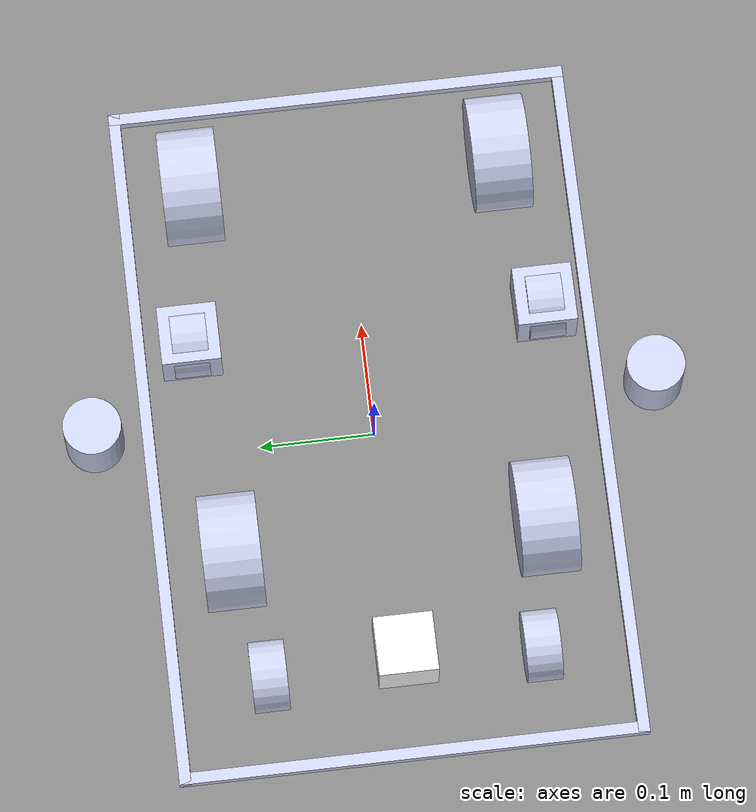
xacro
<?xml version="1.0" encoding="utf-8"?>
<robot
  name="r2_sldasm">
  <link
    name="world" />
  <link
    name="base_footprint" />
  <joint
    name="world_to_base_footprint"
    type="fixed">
    <origin
      xyz="0 0 0"
      rpy="0 0 0" />
    <parent
      link="world" />
    <child
      link="base_footprint" />
  </joint>
  <joint
    name="base_footprint_to_base"
    type="fixed">
    <origin
      xyz="0 0 0.05"
      rpy="0 0 0" />
    <parent
      link="base_footprint" />
    <child
      link="base_link" />
  </joint>
  <link
    name="imu_link" />
  <joint
    name="base_to_imu"
    type="fixed">
    <origin
      xyz="0 0 0"
      rpy="0 0 0" />
    <parent
      link="base_link" />
    <child
      link="imu_link" />
  </joint>
  <link
    name="base_link">
    <inertial>
      <origin
        xyz="1.13922419176372 1.2668045666925 1.27201617566475"
        rpy="0 0 0" />
      <mass
        value="0.366040011435051" />
      <inertia
        ixx="0.00204747066128391"
        ixy="4.46992140780942E-16"
        ixz="8.1080700899077E-08"
        iyy="0.00296607405293247"
        iyz="2.85060987326875E-19"
        izz="0.00116154567791364" />
    </inertial>
    <visual>
      <origin
        xyz="0 0.195 0"
        rpy="0 0 0" />
      <geometry>
        <box
          size="0.6 0.01 0.01" />
      </geometry>
      <material
        name="">
        <color
          rgba="0.792156862745098 0.819607843137255 0.933333333333333 1" />
      </material>
    </visual>
    <visual>
      <origin
        xyz="0 -0.195 0"
        rpy="0 0 0" />
      <geometry>
        <box
          size="0.6 0.01 0.01" />
      </geometry>
      <material
        name="">
        <color
          rgba="0.792156862745098 0.819607843137255 0.933333333333333 1" />
      </material>
    </visual>
    <visual>
      <origin
        xyz="0.295 0 0"
        rpy="0 0 0" />
      <geometry>
        <box
          size="0.01 0.4 0.01" />
      </geometry>
      <material
        name="">
        <color
          rgba="0.792156862745098 0.819607843137255 0.933333333333333 1" />
      </material>
    </visual>
    <visual>
      <origin
        xyz="-0.295 0 0"
        rpy="0 0 0" />
      <geometry>
        <box
          size="0.01 0.4 0.01" />
      </geometry>
      <material
        name="">
        <color
          rgba="0.792156862745098 0.819607843137255 0.933333333333333 1" />
      </material>
    </visual>
    <collision>
      <origin
        xyz="0 0.195 0"
        rpy="0 0 0" />
      <geometry>
        <box
          size="0.6 0.01 0.01" />
      </geometry>
    </collision>
    <collision>
      <origin
        xyz="0 -0.195 0"
        rpy="0 0 0" />
      <geometry>
        <box
          size="0.6 0.01 0.01" />
      </geometry>
    </collision>
    <collision>
      <origin
        xyz="0.295 0 0"
        rpy="0 0 0" />
      <geometry>
        <box
          size="0.01 0.4 0.01" />
      </geometry>
    </collision>
    <collision>
      <origin
        xyz="-0.295 0 0"
        rpy="0 0 0" />
      <geometry>
        <box
          size="0.01 0.4 0.01" />
      </geometry>
    </collision>
  </link>
  <link
    name="fl_wheel_link">
    <inertial>
      <origin
        xyz="-1.1102E-16 4.4409E-16 0.03"
        rpy="0 0 0" />
      <mass
        value="0.45244" />
      <inertia
        ixx="0.00042894"
        ixy="-1.3553E-20"
        ixz="3.7571E-20"
        iyy="0.00042894"
        iyz="1.6021E-19"
        izz="0.00058643" />
    </inertial>
    <visual>
      <origin
        xyz="0 0 0"
        rpy="0 0 0" />
      <geometry>
        <cylinder
          radius="0.05"
          length="0.05" />
      </geometry>
      <material
        name="">
        <color
          rgba="0.79608 0.82353 0.93725 1" />
      </material>
    </visual>
    <collision>
      <origin
        xyz="0 0 0"
        rpy="0 0 0" />
      <geometry>
        <cylinder
          radius="0.05"
          length="0.05" />
      </geometry>
    </collision>
  </link>
  <joint
    name="fl_wheel_joint"
    type="revolute">
    <origin
      xyz="0.228 0.135 0"
      rpy="-1.5708 -0.66414 -3.141589" />
    <parent
      link="base_link" />
    <child
      link="fl_wheel_link" />
    <axis
      xyz="0 0 1" />
    <limit
      lower="-3.1416"
      upper="3.1416"
      effort="10"
      velocity="6.283185" />
  </joint>
  <link
    name="fr_wheel_link">
    <inertial>
      <origin
        xyz="0 0 0.03"
        rpy="0 0 0" />
      <mass
        value="0.45244" />
      <inertia
        ixx="0.00042894"
        ixy="0"
        ixz="-6.1211E-20"
        iyy="0.00042894"
        iyz="2.7444E-19"
        izz="0.00058643" />
    </inertial>
    <visual>
      <origin
        xyz="0 0 0"
        rpy="0 0 0" />
      <geometry>
        <cylinder
          radius="0.05"
          length="0.05" />
      </geometry>
      <material
        name="">
        <color
          rgba="0.79608 0.82353 0.93725 1" />
      </material>
    </visual>
    <collision>
      <origin
        xyz="0 0 0"
        rpy="0 0 0" />
      <geometry>
        <cylinder
          radius="0.05"
          length="0.05" />
      </geometry>
    </collision>
  </link>
  <joint
    name="fr_wheel_joint"
    type="revolute">
    <origin
      xyz="0.228 -0.135 0"
      rpy="1.5708 -0.21334 -3.141589" />
    <parent
      link="base_link" />
    <child
      link="fr_wheel_link" />
    <axis
      xyz="0 0 1" />
    <limit
      lower="-3.1416"
      upper="3.1416"
      effort="10"
      velocity="6.283185" />
  </joint>
  <link
    name="rl_wheel_link">
    <inertial>
      <origin
        xyz="0 0 0.03"
        rpy="0 0 0" />
      <mass
        value="0.45244" />
      <inertia
        ixx="0.00042894"
        ixy="-1.3553E-20"
        ixz="1.2533E-19"
        iyy="0.00042894"
        iyz="6.9074E-20"
        izz="0.00058643" />
    </inertial>
    <visual>
      <origin
        xyz="0 0 0"
        rpy="0 0 0" />
      <geometry>
        <cylinder
          radius="0.05"
          length="0.05" />
      </geometry>
      <material
        name="">
        <color
          rgba="0.79608 0.82353 0.93725 1" />
      </material>
    </visual>
    <collision>
      <origin
        xyz="0 0 0"
        rpy="0 0 0" />
      <geometry>
        <cylinder
          radius="0.05"
          length="0.05" />
      </geometry>
    </collision>
  </link>
  <joint
    name="rl_wheel_joint"
    type="revolute">
    <origin
      xyz="-0.102 0.135 0"
      rpy="-1.5708 0.15867 -3.141589" />
    <parent
      link="base_link" />
    <child
      link="rl_wheel_link" />
    <axis
      xyz="0 0 1" />
    <limit
      lower="-3.1416"
      upper="3.1416"
      effort="10"
      velocity="6.283185" />
  </joint>
  <link
    name="rr_wheel_link">
    <inertial>
      <origin
        xyz="0 0 0.03"
        rpy="0 0 0" />
      <mass
        value="0.45244" />
      <inertia
        ixx="0.00042894"
        ixy="-1.3553E-20"
        ixz="5.9443E-20"
        iyy="0.00042894"
        iyz="-2.1109E-19"
        izz="0.00058643" />
    </inertial>
    <visual>
      <origin
        xyz="0 0 0"
        rpy="0 0 0" />
      <geometry>
        <cylinder
          radius="0.05"
          length="0.05" />
      </geometry>
      <material
        name="">
        <color
          rgba="0.79608 0.82353 0.93725 1" />
      </material>
    </visual>
    <collision>
      <origin
        xyz="0 0 0"
        rpy="0 0 0" />
      <geometry>
        <cylinder
          radius="0.05"
          length="0.05" />
      </geometry>
    </collision>
  </link>
  <joint
    name="rr_wheel_joint"
    type="revolute">
    <origin
      xyz="-0.102 -0.135 0"
      rpy="-1.5708 0.39742 -0.000004" />
    <parent
      link="base_link" />
    <child
      link="rr_wheel_link" />
    <axis
      xyz="0 0 1" />
    <limit
      lower="-3.1416"
      upper="3.1416"
      effort="10"
      velocity="6.283185" />
  </joint>
  <link
    name="lidar1_link">
    <inertial>
      <origin
        xyz="3.4964E-06 0.038527 -0.00045594"
        rpy="0 0 0" />
      <mass
        value="0.23922" />
      <inertia
        ixx="0.0002191"
        ixy="2.549E-08"
        ixz="8.8072E-08"
        iyy="0.00011628"
        iyz="3.9064E-07"
        izz="0.00021622" />
    </inertial>
    <visual>
      <origin
        xyz="0 0 0"
        rpy="0 0 0" />
      <geometry>
        <cylinder
          radius="0.025"
          length="0.06" />
      </geometry>
      <material
        name="">
        <color
          rgba="0.79216 0.81961 0.93333 1" />
      </material>
    </visual>
    <collision>
      <origin
        xyz="0 0 0"
        rpy="0 0 0" />
      <geometry>
        <cylinder
          radius="0.025"
          length="0.06" />
      </geometry>
    </collision>
  </link>
  <joint
    name="lidar1_joint"
    type="fixed">
    <origin
      xyz="0 0.24 0.05"
      rpy="0 0 1.5708" />
    <parent
      link="base_link" />
    <child
      link="lidar1_link" />
    <axis
      xyz="0 0 0" />
  </joint>
  <link
    name="lidar2_link">
    <inertial>
      <origin
        xyz="3.4963E-06 0.038527 -0.00045594"
        rpy="0 0 0" />
      <mass
        value="0.23922" />
      <inertia
        ixx="0.0002191"
        ixy="2.549E-08"
        ixz="8.8073E-08"
        iyy="0.00011628"
        iyz="3.9064E-07"
        izz="0.00021622" />
    </inertial>
    <visual>
      <origin
        xyz="0 0 0"
        rpy="0 0 0" />
      <geometry>
        <cylinder
          radius="0.025"
          length="0.06" />
      </geometry>
      <material
        name="">
        <color
          rgba="0.79216 0.81961 0.93333 1" />
      </material>
    </visual>
    <collision>
      <origin
        xyz="0 0 0"
        rpy="0 0 0" />
      <geometry>
        <cylinder
          radius="0.025"
          length="0.06" />
      </geometry>
    </collision>
  </link>
  <joint
    name="lidar2_joint"
    type="fixed">
    <origin
      xyz="0 -0.24 0.05"
      rpy="0 0 -1.5708" />
    <parent
      link="base_link" />
    <child
      link="lidar2_link" />
    <axis
      xyz="0 0 0" />
  </joint>
  <link
    name="laser_left" />
  <joint
    name="lidar1_to_laser_left"
    type="fixed">
    <origin
      xyz="0 0 0"
      rpy="0 0 0" />
    <parent
      link="lidar1_link" />
    <child
      link="laser_left" />
  </joint>
  <link
    name="laser_right" />
  <joint
    name="lidar2_to_laser_right"
    type="fixed">
    <origin
      xyz="0 0 0"
      rpy="0 0 0" />
    <parent
      link="lidar2_link" />
    <child
      link="laser_right" />
  </joint>
  <link
    name="fl_lift_link">
    <inertial>
      <origin
        xyz="-0.0070463 -0.013228 0.28759"
        rpy="0 0 0" />
      <mass
        value="0.078193" />
      <inertia
        ixx="0.00080343"
        ixy="-2.6429E-09"
        ixz="-1.3443E-09"
        iyy="0.00080152"
        iyz="3.1428E-10"
        izz="1.109E-05" />
    </inertial>
    <visual>
      <origin
        xyz="0 0 0"
        rpy="0 0 0" />
      <geometry>
        <box
          size="0.05 0.05 0.05" />
      </geometry>
      <material
        name="">
        <color
          rgba="0.79216 0.81961 0.93333 1" />
      </material>
    </visual>
    <collision>
      <origin
        xyz="0 0 0"
        rpy="0 0 0" />
      <geometry>
        <box
          size="0.05 0.05 0.05" />
      </geometry>
    </collision>
  </link>
  <joint
    name="fl_lift_joint"
    type="prismatic">
    <origin
      xyz="0.055 0.15 0.1112"
      rpy="0 0 1.570796" />
    <parent
      link="base_link" />
    <child
      link="fl_lift_link" />
    <axis
      xyz="0 0 1" />
    <limit
      lower="-0.39"
      upper="0"
      effort="300"
      velocity="0.05" />
  </joint>
  <link
    name="fl_subwheel_link">
    <inertial>
      <origin
        xyz="-2.55795384873636E-13 1.35447209004269E-14 0.0159999999997129"
        rpy="0 0 0" />
      <mass
        value="0.0859233130579177" />
      <inertia
        ixx="2.75791810474836E-05"
        ixy="-4.2351647362715E-22"
        ixz="2.1700004154568E-20"
        iyy="2.75791810474836E-05"
        iyz="3.36778628766409E-20"
        izz="4.05398582554522E-05" />
    </inertial>
    <visual>
      <origin
        xyz="0 0 0"
        rpy="0 0 0" />
      <geometry>
        <cylinder
          radius="0.03"
          length="0.03" />
      </geometry>
      <material
        name="">
        <color
          rgba="0.792156862745098 0.819607843137255 0.933333333333333 1" />
      </material>
    </visual>
    <collision>
      <origin
        xyz="0 0 0"
        rpy="0 0 0" />
      <geometry>
        <cylinder
          radius="0.03"
          length="0.03" />
      </geometry>
    </collision>
  </link>
  <joint
    name="fl_subwheel_joint"
    type="revolute">
    <origin
      xyz="0 0 0"
      rpy="-1.5708 0.052998 1.5708" />
    <parent
      link="fl_lift_link" />
    <child
      link="fl_subwheel_link" />
    <axis
      xyz="0 0 1" />
    <limit
      lower="-3.1416"
      upper="3.1416"
      effort="10"
      velocity="6.283185" />
  </joint>
  <link
    name="fr_lift_link">
    <inertial>
      <origin
        xyz="-0.050148 0.05792 -0.10261"
        rpy="0 0 0" />
      <mass
        value="0.078193" />
      <inertia
        ixx="0.00080343"
        ixy="-2.6429E-09"
        ixz="1.3443E-09"
        iyy="0.00080152"
        iyz="-3.1428E-10"
        izz="1.109E-05" />
    </inertial>
    <visual>
      <origin
        xyz="0 0 0"
        rpy="0 0 0" />
      <geometry>
        <box
          size="0.05 0.05 0.05" />
      </geometry>
      <material
        name="">
        <color
          rgba="0.79216 0.81961 0.93333 1" />
      </material>
    </visual>
    <collision>
      <origin
        xyz="0 0 0"
        rpy="0 0 0" />
      <geometry>
        <box
          size="0.05 0.05 0.05" />
      </geometry>
    </collision>
  </link>
  <joint
    name="fr_lift_joint"
    type="prismatic">
    <origin
      xyz="0.055 -0.15 0.1112"
      rpy="0 0 1.570796" />
    <parent
      link="base_link" />
    <child
      link="fr_lift_link" />
    <axis
      xyz="0 0 1" />
    <limit
      lower="-0.39"
      upper="0"
      effort="300"
      velocity="0.05" />
  </joint>
  <link
    name="fr_subwheel_link">
    <inertial>
      <origin
        xyz="-0.0578334482592697 -0.0708333615992325 -0.016000000000308"
        rpy="0 0 0" />
      <mass
        value="0.0859233130579177" />
      <inertia
        ixx="2.75791810474836E-05"
        ixy="5.29395592033938E-22"
        ixz="2.40011786231133E-20"
        iyy="2.75791810474837E-05"
        iyz="1.30882505971889E-20"
        izz="4.05398582554522E-05" />
    </inertial>
    <visual>
      <origin
        xyz="0 0 0"
        rpy="0 0 0" />
      <geometry>
        <cylinder
          radius="0.03"
          length="0.03" />
      </geometry>
      <material
        name="">
        <color
          rgba="0.792156862745098 0.819607843137255 0.933333333333333 1" />
      </material>
    </visual>
    <collision>
      <origin
        xyz="0 0 0"
        rpy="0 0 0" />
      <geometry>
        <cylinder
          radius="0.03"
          length="0.03" />
      </geometry>
    </collision>
  </link>
  <joint
    name="fr_subwheel_joint"
    type="revolute">
    <origin
      xyz="0 0 0"
      rpy="-1.5708 0.052998 -1.5708" />
    <parent
      link="fr_lift_link" />
    <child
      link="fr_subwheel_link" />
    <axis
      xyz="0 0 1" />
    <limit
      lower="-3.1416"
      upper="3.1416"
      effort="10"
      velocity="6.283185" />
  </joint>
  <link
    name="r_lift_link">
    <inertial>
      <origin
        xyz="-0.050148 0.05792 -0.10261"
        rpy="0 0 0" />
      <mass
        value="0.078193" />
      <inertia
        ixx="0.00080343"
        ixy="-2.6429E-09"
        ixz="1.3443E-09"
        iyy="0.00080152"
        iyz="-3.1428E-10"
        izz="1.109E-05" />
    </inertial>
    <visual>
      <origin
        xyz="0 0 0"
        rpy="0 0 0" />
      <geometry>
        <box
          size="0.05 0.05 0.05" />
      </geometry>
      <material
        name="">
        <color
          rgba="1 1 1 1" />
      </material>
    </visual>
    <collision>
      <origin
        xyz="0 0 0"
        rpy="0 0 0" />
      <geometry>
        <box
          size="0.05 0.05 0.05" />
      </geometry>
    </collision>
  </link>
  <joint
    name="r_lift_joint"
    type="prismatic">
    <origin
      xyz="-0.225 0 0.0895"
      rpy="0 0 1.570796" />
    <parent
      link="base_link" />
    <child
      link="r_lift_link" />
    <axis
      xyz="0 0 1" />
    <limit
      lower="-0.39"
      upper="0"
      effort="300"
      velocity="0.05" />
  </joint>
  <link
    name="rl_subwheel_link">
    <inertial>
      <origin
        xyz="-2.16715534406831E-13 6.98330282489223E-13 0.0160000000005946"
        rpy="0 0 0" />
      <mass
        value="0.0859233130579177" />
      <inertia
        ixx="2.75791810474836E-05"
        ixy="-1.6940658945086E-21"
        ixz="-5.15555461762245E-21"
        iyy="2.75791810474836E-05"
        iyz="-3.90132221096238E-21"
        izz="4.05398582554522E-05" />
    </inertial>
    <visual>
      <origin
        xyz="0 0 0"
        rpy="0 0 0" />
      <geometry>
        <cylinder
          radius="0.03"
          length="0.03" />
      </geometry>
      <material
        name="">
        <color
          rgba="0.792156862745098 0.819607843137255 0.933333333333333 1" />
      </material>
    </visual>
    <collision>
      <origin
        xyz="0 0 0"
        rpy="0 0 0" />
      <geometry>
        <cylinder
          radius="0.03"
          length="0.03" />
      </geometry>
    </collision>
  </link>
  <joint
    name="rl_subwheel_joint"
    type="revolute">
    <origin
      xyz="0.115 0 -0.041"
      rpy="-1.5708 1.27 -1.5708" />
    <parent
      link="r_lift_link" />
    <child
      link="rl_subwheel_link" />
    <axis
      xyz="0 0 1" />
    <limit
      lower="-3.1416"
      upper="3.1416"
      effort="10"
      velocity="6.283185" />
  </joint>
  <link
    name="rr_subwheel_link">
    <inertial>
      <origin
        xyz="5.19695397827036E-13 5.14699394216223E-13 0.0160000000005942"
        rpy="0 0 0" />
      <mass
        value="0.0859233130579178" />
      <inertia
        ixx="2.75791810474837E-05"
        ixy="0"
        ixz="-2.55734576140759E-21"
        iyy="2.75791810474837E-05"
        iyz="-2.08956140086617E-21"
        izz="4.05398582554523E-05" />
    </inertial>
    <visual>
      <origin
        xyz="0 0 0"
        rpy="0 0 0" />
      <geometry>
        <cylinder
          radius="0.03"
          length="0.03" />
      </geometry>
      <material
        name="">
        <color
          rgba="0.792156862745098 0.819607843137255 0.933333333333333 1" />
      </material>
    </visual>
    <collision>
      <origin
        xyz="0 0 0"
        rpy="0 0 0" />
      <geometry>
        <cylinder
          radius="0.03"
          length="0.03" />
      </geometry>
    </collision>
  </link>
  <joint
    name="rr_subwheel_joint"
    type="revolute">
    <origin
      xyz="-0.115 0 -0.041"
      rpy="1.5708 0.77987 1.5708" />
    <parent
      link="r_lift_link" />
    <child
      link="rr_subwheel_link" />
    <axis
      xyz="0 0 1" />
    <limit
      lower="-3.1416"
      upper="3.1416"
      effort="10"
      velocity="6.283185" />
  </joint>
</robot>
